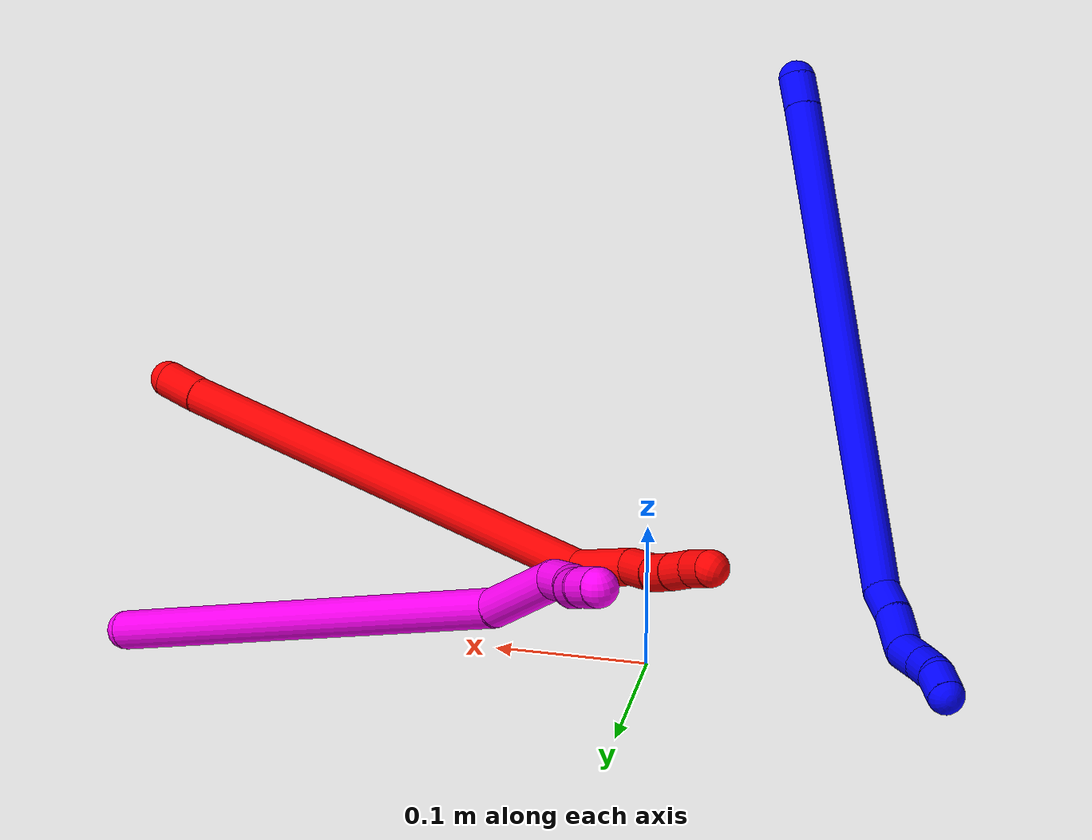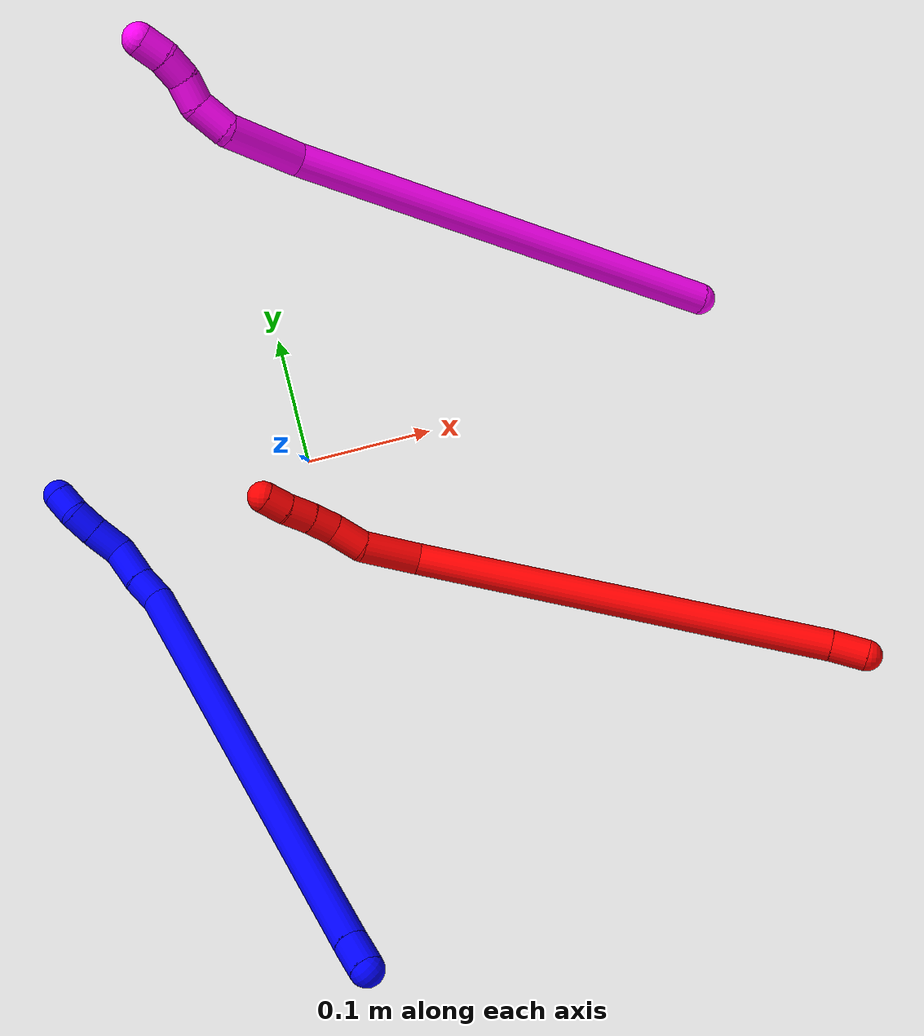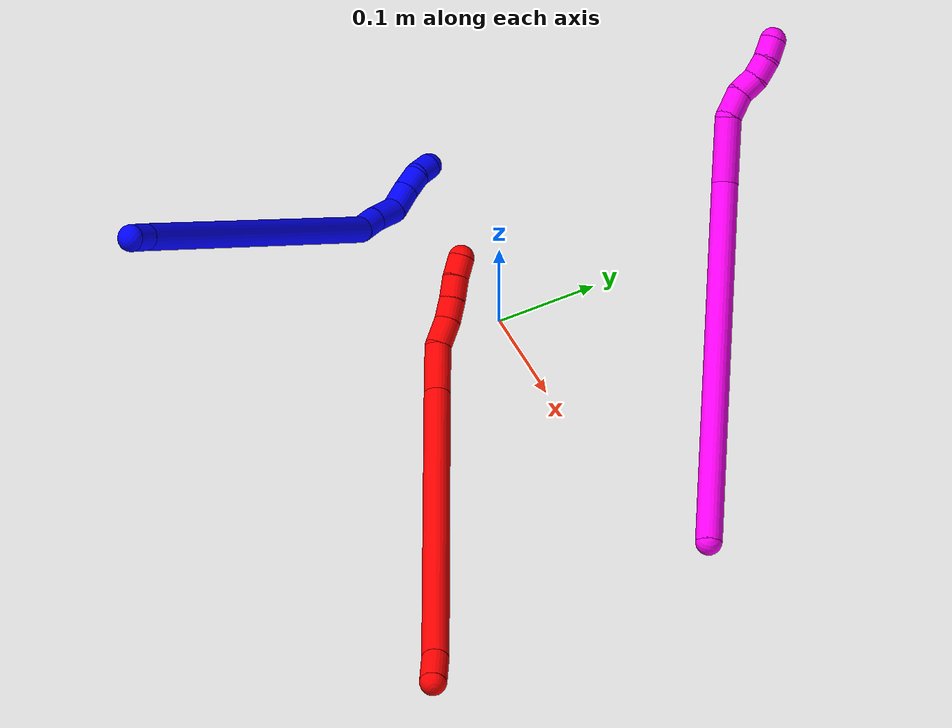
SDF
<sdf version="1.7">
 <world name="default">
  <model name="photoneo_s_sensor">
   <static>1</static>
   <pose>0 0 2 1.57079 1.57079 3.14159</pose>
   <link name="link">
    <inertial><mass>0.1</mass></inertial>
    <sensor name="sensor" type="depth">
     <update_rate>30</update_rate>
     <camera>
      <horizontal_fov>1.22</horizontal_fov>
      <image><width>1920</width><height>1200</height><format>B8G8R8</format></image>
      <clip><near>0.1</near><far>2</far></clip>
      <depth_camera><output>points</output></depth_camera>
     </camera>
     <plugin name="camera_plugin" filename="libgazebo_ros_depth_camera.so">
      <baseline>0.2</baseline>
      <alwaysOn>1</alwaysOn>
      <updateRate>0.0</updateRate>
      <cameraName>camera_ir</cameraName>
      <imageTopicName>/camera/color/image_raw</imageTopicName>
      <cameraInfoTopicName>/camera/color/camera_info</cameraInfoTopicName>
      <depthImageTopicName>/camera/depth/image_raw</depthImageTopicName>
      <depthImageCameraInfoTopicName>/camera/depth/camera_info</depthImageCameraInfoTopicName>
      <pointCloudTopicName>/camera/depth/points</pointCloudTopicName>
      <frameName>fr_optical</frameName>
      <pointCloudCutoff>0.1</pointCloudCutoff>
      <pointCloudCutoffMax>2.0</pointCloudCutoffMax>
      <distortionK1>0</distortionK1>
      <distortionK2>0</distortionK2>
      <distortionK3>0</distortionK3>
      <distortionT1>0</distortionT1>
      <distortionT2>0</distortionT2>
      <CxPrime>0</CxPrime>
      <Cx>0</Cx>
      <Cy>0</Cy>
      <focalLength>0</focalLength>
      <hackBaseline>0</hackBaseline>
     </plugin>
    </sensor>
   </link>
  </model>
  <model name="bin">
   <static>1</static>
   <link name="bottom">
    <collision name="collision-bottom">
     <pose>0 0 -0.01 0 -0 0</pose>
     <geometry><box><size>0.8 0.6 0.02</size></box></geometry>
     <surface>
      <friction><ode><mu>100</mu><mu2>100</mu2></ode></friction>
      <contact><collide_bitmask>65535</collide_bitmask></contact>
     </surface>
    </collision>
   </link>
   <link name="west_wall">
    <collision name="collision-west_wall">
     <pose>-0.41 0 0.1 0 -0 0</pose>
     <geometry><box><size>0.02 0.6 0.2</size></box></geometry>
     <surface>
      <friction><ode><mu>100</mu><mu2>100</mu2></ode></friction>
      <contact><collide_bitmask>65535</collide_bitmask></contact>
     </surface>
    </collision>
   </link>
   <link name="east_wall">
    <collision name="collision-east_wall">
     <pose>0.41 0 0.1 0 -0 0</pose>
     <geometry><box><size>0.02 0.6 0.2</size></box></geometry>
     <surface>
      <friction><ode><mu>100</mu><mu2>100</mu2></ode></friction>
      <contact><collide_bitmask>65535</collide_bitmask></contact>
     </surface>
    </collision>
   </link>
   <link name="south_wall">
    <collision name="collision-south_wall">
     <pose>0 -0.31 0.1 0 -0 0</pose>
     <geometry><box><size>0.8 0.02 0.2</size></box></geometry>
     <surface>
      <friction><ode><mu>100</mu><mu2>100</mu2></ode></friction>
      <contact><collide_bitmask>65535</collide_bitmask></contact>
     </surface>
    </collision>
   </link>
   <link name="north_wall">
    <collision name="collision-north_wall">
     <pose>0 0.31 0.1 0 -0 0</pose>
     <geometry><box><size>0.8 0.02 0.2</size></box></geometry>
     <surface>
      <friction><ode><mu>100</mu><mu2>100</mu2></ode></friction>
      <contact><collide_bitmask>65535</collide_bitmask></contact>
     </surface>
    </collision>
   </link>
  </model>
  <model name="1">
   <static>0</static>
   <link name="1">
    <collision name="collision-cylinder-e_1_1_4">
     <pose>-0.002651 0.008505 -0.007513 -2.29433 -0.229488 0.50045</pose>
     <geometry><cylinder><radius>0.0125</radius><length>0.023308</length></cylinder></geometry>
     <surface>
      <friction><ode><mu>1.16</mu><mu2>1.16</mu2><slip1>0</slip1><slip2>0</slip2></ode></friction>
      <contact><ode><kp>1e+06</kp><kd>1</kd><max_vel>0</max_vel><min_depth>0.001</min_depth></ode></contact>
     </surface>
    </collision>
    <visual name="visual-cylinder-e_1_1_4">
     <pose>-0.002651 0.008505 -0.007513 -2.29433 -0.229488 0.50045</pose>
     <geometry><cylinder><radius>0.0125</radius><length>0.023308</length></cylinder></geometry>
     <material><ambient>0 0 1 1</ambient></material>
    </visual>
    <collision name="collision-cylinder-e_2_4_5">
     <pose>-0.049626 0.146205 -0.128973 -2.29357 -0.25184 0.546837</pose>
     <geometry><cylinder><radius>0.0125</radius><length>0.355751</length></cylinder></geometry>
     <surface>
      <friction><ode><mu>1.16</mu><mu2>1.16</mu2><slip1>0</slip1><slip2>0</slip2></ode></friction>
      <contact><ode><kp>1e+06</kp><kd>1</kd><max_vel>0</max_vel><min_depth>0.001</min_depth></ode></contact>
     </surface>
    </collision>
    <visual name="visual-cylinder-e_2_4_5">
     <pose>-0.049626 0.146205 -0.128973 -2.29357 -0.25184 0.546837</pose>
     <geometry><cylinder><radius>0.0125</radius><length>0.355751</length></cylinder></geometry>
     <material><ambient>0 0 1 1</ambient></material>
    </visual>
    <collision name="collision-cylinder-e_3_5_6">
     <pose>-0.094551 0.28094 -0.253103 -2.64327 -0.051768 0.202799</pose>
     <geometry><cylinder><radius>0.0125</radius><length>0.023217</length></cylinder></geometry>
     <surface>
      <friction><ode><mu>1.16</mu><mu2>1.16</mu2><slip1>0</slip1><slip2>0</slip2></ode></friction>
      <contact><ode><kp>1e+06</kp><kd>1</kd><max_vel>0</max_vel><min_depth>0.001</min_depth></ode></contact>
     </surface>
    </collision>
    <visual name="visual-cylinder-e_3_5_6">
     <pose>-0.094551 0.28094 -0.253103 -2.64327 -0.051768 0.202799</pose>
     <geometry><cylinder><radius>0.0125</radius><length>0.023217</length></cylinder></geometry>
     <material><ambient>0 0 1 1</ambient></material>
    </visual>
    <collision name="collision-cylinder-e_4_6_7">
     <pose>-0.097952 0.294004 -0.276473 -2.6231 -0.182414 0.664169</pose>
     <geometry><cylinder><radius>0.0125</radius><length>0.030877</length></cylinder></geometry>
     <surface>
      <friction><ode><mu>1.16</mu><mu2>1.16</mu2><slip1>0</slip1><slip2>0</slip2></ode></friction>
      <contact><ode><kp>1e+06</kp><kd>1</kd><max_vel>0</max_vel><min_depth>0.001</min_depth></ode></contact>
     </surface>
    </collision>
    <visual name="visual-cylinder-e_4_6_7">
     <pose>-0.097952 0.294004 -0.276473 -2.6231 -0.182414 0.664169</pose>
     <geometry><cylinder><radius>0.0125</radius><length>0.030877</length></cylinder></geometry>
     <material><ambient>0 0 1 1</ambient></material>
    </visual>
    <collision name="collision-cylinder-e_5_7_8">
     <pose>-0.098754 0.303241 -0.302122 -3.00506 0.157575 -1.71412</pose>
     <geometry><cylinder><radius>0.0125</radius><length>0.025474</length></cylinder></geometry>
     <surface>
      <friction><ode><mu>1.16</mu><mu2>1.16</mu2><slip1>0</slip1><slip2>0</slip2></ode></friction>
      <contact><ode><kp>1e+06</kp><kd>1</kd><max_vel>0</max_vel><min_depth>0.001</min_depth></ode></contact>
     </surface>
    </collision>
    <visual name="visual-cylinder-e_5_7_8">
     <pose>-0.098754 0.303241 -0.302122 -3.00506 0.157575 -1.71412</pose>
     <geometry><cylinder><radius>0.0125</radius><length>0.025474</length></cylinder></geometry>
     <material><ambient>0 0 1 1</ambient></material>
    </visual>
    <collision name="collision-cylinder-e_6_8_9">
     <pose>-0.095887 0.305842 -0.325121 -3.05736 0.081916 -1.54284</pose>
     <geometry><cylinder><radius>0.0125</radius><length>0.02122</length></cylinder></geometry>
     <surface>
      <friction><ode><mu>1.16</mu><mu2>1.16</mu2><slip1>0</slip1><slip2>0</slip2></ode></friction>
      <contact><ode><kp>1e+06</kp><kd>1</kd><max_vel>0</max_vel><min_depth>0.001</min_depth></ode></contact>
     </surface>
    </collision>
    <visual name="visual-cylinder-e_6_8_9">
     <pose>-0.095887 0.305842 -0.325121 -3.05736 0.081916 -1.54284</pose>
     <geometry><cylinder><radius>0.0125</radius><length>0.02122</length></cylinder></geometry>
     <material><ambient>0 0 1 1</ambient></material>
    </visual>
    <collision name="collision-cylinder-e_7_9_2">
     <pose>-0.095791 0.311067 -0.344722 -2.69549 -0.07672 0.33522</pose>
     <geometry><cylinder><radius>0.0125</radius><length>0.020153</length></cylinder></geometry>
     <surface>
      <friction><ode><mu>1.16</mu><mu2>1.16</mu2><slip1>0</slip1><slip2>0</slip2></ode></friction>
      <contact><ode><kp>1e+06</kp><kd>1</kd><max_vel>0</max_vel><min_depth>0.001</min_depth></ode></contact>
     </surface>
    </collision>
    <visual name="visual-cylinder-e_7_9_2">
     <pose>-0.095791 0.311067 -0.344722 -2.69549 -0.07672 0.33522</pose>
     <geometry><cylinder><radius>0.0125</radius><length>0.020153</length></cylinder></geometry>
     <material><ambient>0 0 1 1</ambient></material>
    </visual>
    <collision name="collision-sphere-2">
     <pose>-0.096564 0.315402 -0.353786 0 -0 0</pose>
     <geometry><sphere><radius>0.0125</radius></sphere></geometry>
     <surface>
      <friction><ode><mu>1.16</mu><mu2>1.16</mu2><slip1>0</slip1><slip2>0</slip2></ode></friction>
      <contact><ode><kp>1e+06</kp><kd>1</kd><max_vel>0</max_vel><min_depth>0.001</min_depth></ode></contact>
     </surface>
    </collision>
    <visual name="visual-sphere-2">
     <pose>-0.096564 0.315402 -0.353786 0 -0 0</pose>
     <geometry><sphere><radius>0.0125</radius></sphere></geometry>
     <material><ambient>0 0 1 1</ambient></material>
    </visual>
    <collision name="collision-sphere-9">
     <pose>-0.095019 0.306732 -0.335658 0 -0 0</pose>
     <geometry><sphere><radius>0.0125</radius></sphere></geometry>
     <surface>
      <friction><ode><mu>1.16</mu><mu2>1.16</mu2><slip1>0</slip1><slip2>0</slip2></ode></friction>
      <contact><ode><kp>1e+06</kp><kd>1</kd><max_vel>0</max_vel><min_depth>0.001</min_depth></ode></contact>
     </surface>
    </collision>
    <visual name="visual-sphere-9">
     <pose>-0.095019 0.306732 -0.335658 0 -0 0</pose>
     <geometry><sphere><radius>0.0125</radius></sphere></geometry>
     <material><ambient>0 0 1 1</ambient></material>
    </visual>
    <collision name="collision-sphere-4">
     <pose>-0.005302 0.01701 -0.015026 0 -0 0</pose>
     <geometry><sphere><radius>0.0125</radius></sphere></geometry>
     <surface>
      <friction><ode><mu>1.16</mu><mu2>1.16</mu2><slip1>0</slip1><slip2>0</slip2></ode></friction>
      <contact><ode><kp>1e+06</kp><kd>1</kd><max_vel>0</max_vel><min_depth>0.001</min_depth></ode></contact>
     </surface>
    </collision>
    <visual name="visual-sphere-4">
     <pose>-0.005302 0.01701 -0.015026 0 -0 0</pose>
     <geometry><sphere><radius>0.0125</radius></sphere></geometry>
     <material><ambient>0 0 1 1</ambient></material>
    </visual>
    <collision name="collision-sphere-1">
     <geometry><sphere><radius>0.0125</radius></sphere></geometry>
     <surface>
      <friction><ode><mu>1.16</mu><mu2>1.16</mu2><slip1>0</slip1><slip2>0</slip2></ode></friction>
      <contact><ode><kp>1e+06</kp><kd>1</kd><max_vel>0</max_vel><min_depth>0.001</min_depth></ode></contact>
     </surface>
    </collision>
    <visual name="visual-sphere-1">
     <geometry><sphere><radius>0.0125</radius></sphere></geometry>
     <material><ambient>0 0 1 1</ambient></material>
    </visual>
    <collision name="collision-sphere-8">
     <pose>-0.096755 0.304953 -0.314584 0 -0 0</pose>
     <geometry><sphere><radius>0.0125</radius></sphere></geometry>
     <surface>
      <friction><ode><mu>1.16</mu><mu2>1.16</mu2><slip1>0</slip1><slip2>0</slip2></ode></friction>
      <contact><ode><kp>1e+06</kp><kd>1</kd><max_vel>0</max_vel><min_depth>0.001</min_depth></ode></contact>
     </surface>
    </collision>
    <visual name="visual-sphere-8">
     <pose>-0.096755 0.304953 -0.314584 0 -0 0</pose>
     <geometry><sphere><radius>0.0125</radius></sphere></geometry>
     <material><ambient>0 0 1 1</ambient></material>
    </visual>
    <collision name="collision-sphere-5">
     <pose>-0.09395 0.275399 -0.24292 0 -0 0</pose>
     <geometry><sphere><radius>0.0125</radius></sphere></geometry>
     <surface>
      <friction><ode><mu>1.16</mu><mu2>1.16</mu2><slip1>0</slip1><slip2>0</slip2></ode></friction>
      <contact><ode><kp>1e+06</kp><kd>1</kd><max_vel>0</max_vel><min_depth>0.001</min_depth></ode></contact>
     </surface>
    </collision>
    <visual name="visual-sphere-5">
     <pose>-0.09395 0.275399 -0.24292 0 -0 0</pose>
     <geometry><sphere><radius>0.0125</radius></sphere></geometry>
     <material><ambient>0 0 1 1</ambient></material>
    </visual>
    <collision name="collision-sphere-6">
     <pose>-0.095152 0.28648 -0.263286 0 -0 0</pose>
     <geometry><sphere><radius>0.0125</radius></sphere></geometry>
     <surface>
      <friction><ode><mu>1.16</mu><mu2>1.16</mu2><slip1>0</slip1><slip2>0</slip2></ode></friction>
      <contact><ode><kp>1e+06</kp><kd>1</kd><max_vel>0</max_vel><min_depth>0.001</min_depth></ode></contact>
     </surface>
    </collision>
    <visual name="visual-sphere-6">
     <pose>-0.095152 0.28648 -0.263286 0 -0 0</pose>
     <geometry><sphere><radius>0.0125</radius></sphere></geometry>
     <material><ambient>0 0 1 1</ambient></material>
    </visual>
    <collision name="collision-sphere-7">
     <pose>-0.100753 0.301528 -0.28966 0 -0 0</pose>
     <geometry><sphere><radius>0.0125</radius></sphere></geometry>
     <surface>
      <friction><ode><mu>1.16</mu><mu2>1.16</mu2><slip1>0</slip1><slip2>0</slip2></ode></friction>
      <contact><ode><kp>1e+06</kp><kd>1</kd><max_vel>0</max_vel><min_depth>0.001</min_depth></ode></contact>
     </surface>
    </collision>
    <visual name="visual-sphere-7">
     <pose>-0.100753 0.301528 -0.28966 0 -0 0</pose>
     <geometry><sphere><radius>0.0125</radius></sphere></geometry>
     <material><ambient>0 0 1 1</ambient></material>
    </visual>
    <inertial>
     <pose>-0.058834 0.17659 -0.164026 0 -0 0</pose>
     <mass>0.5</mass>
     <inertia>
      <ixx>0.005012</ixx>
      <ixy>0</ixy>
      <ixz>0</ixz>
      <iyy>0.000154</iyy>
      <iyz>0</iyz>
      <izz>-0.001829</izz>
     </inertia>
    </inertial>
   </link>
   <pose>-0.029151 -0.355736 0.262166 -1.78232 -0.227384 -2.61819</pose>
  </model>
  <model name="2">
   <static>0</static>
   <link name="2">
    <collision name="collision-cylinder-e_1_1_4">
     <pose>-0.000634 0.002515 -0.01429 -2.96739 -0.043676 0.490206</pose>
     <geometry><cylinder><radius>0.0125</radius><length>0.029047</length></cylinder></geometry>
     <surface>
      <friction><ode><mu>1.16</mu><mu2>1.16</mu2><slip1>0</slip1><slip2>0</slip2></ode></friction>
      <contact><ode><kp>1e+06</kp><kd>1</kd><max_vel>0</max_vel><min_depth>0.001</min_depth></ode></contact>
     </surface>
    </collision>
    <visual name="visual-cylinder-e_1_1_4">
     <pose>-0.000634 0.002515 -0.01429 -2.96739 -0.043676 0.490206</pose>
     <geometry><cylinder><radius>0.0125</radius><length>0.029047</length></cylinder></geometry>
     <material><ambient>1 0 0 1</ambient></material>
    </visual>
    <collision name="collision-cylinder-e_2_4_5">
     <pose>-0.01344 0.024268 -0.193041 -3.02514 -0.073379 1.12395</pose>
     <geometry><cylinder><radius>0.0125</radius><length>0.332058</length></cylinder></geometry>
     <surface>
      <friction><ode><mu>1.16</mu><mu2>1.16</mu2><slip1>0</slip1><slip2>0</slip2></ode></friction>
      <contact><ode><kp>1e+06</kp><kd>1</kd><max_vel>0</max_vel><min_depth>0.001</min_depth></ode></contact>
     </surface>
    </collision>
    <visual name="visual-cylinder-e_2_4_5">
     <pose>-0.01344 0.024268 -0.193041 -3.02514 -0.073379 1.12395</pose>
     <geometry><cylinder><radius>0.0125</radius><length>0.332058</length></cylinder></geometry>
     <material><ambient>1 0 0 1</ambient></material>
    </visual>
    <collision name="collision-cylinder-e_3_5_6">
     <pose>-0.037062 0.047828 -0.378254 -2.93627 -0.495257 2.36768</pose>
     <geometry><cylinder><radius>0.0125</radius><length>0.048183</length></cylinder></geometry>
     <surface>
      <friction><ode><mu>1.16</mu><mu2>1.16</mu2><slip1>0</slip1><slip2>0</slip2></ode></friction>
      <contact><ode><kp>1e+06</kp><kd>1</kd><max_vel>0</max_vel><min_depth>0.001</min_depth></ode></contact>
     </surface>
    </collision>
    <visual name="visual-cylinder-e_3_5_6">
     <pose>-0.037062 0.047828 -0.378254 -2.93627 -0.495257 2.36768</pose>
     <geometry><cylinder><radius>0.0125</radius><length>0.048183</length></cylinder></geometry>
     <material><ambient>1 0 0 1</ambient></material>
    </visual>
    <collision name="collision-cylinder-e_4_6_7">
     <pose>-0.053186 0.058539 -0.410116 -2.61971 -0.349667 1.16881</pose>
     <geometry><cylinder><radius>0.0125</radius><length>0.027284</length></cylinder></geometry>
     <surface>
      <friction><ode><mu>1.16</mu><mu2>1.16</mu2><slip1>0</slip1><slip2>0</slip2></ode></friction>
      <contact><ode><kp>1e+06</kp><kd>1</kd><max_vel>0</max_vel><min_depth>0.001</min_depth></ode></contact>
     </surface>
    </collision>
    <visual name="visual-cylinder-e_4_6_7">
     <pose>-0.053186 0.058539 -0.410116 -2.61971 -0.349667 1.16881</pose>
     <geometry><cylinder><radius>0.0125</radius><length>0.027284</length></cylinder></geometry>
     <material><ambient>1 0 0 1</ambient></material>
    </visual>
    <collision name="collision-cylinder-e_5_7_8">
     <pose>-0.063353 0.068989 -0.429399 -2.68048 -0.541872 1.73835</pose>
     <geometry><cylinder><radius>0.0125</radius><length>0.021304</length></cylinder></geometry>
     <surface>
      <friction><ode><mu>1.16</mu><mu2>1.16</mu2><slip1>0</slip1><slip2>0</slip2></ode></friction>
      <contact><ode><kp>1e+06</kp><kd>1</kd><max_vel>0</max_vel><min_depth>0.001</min_depth></ode></contact>
     </surface>
    </collision>
    <visual name="visual-cylinder-e_5_7_8">
     <pose>-0.063353 0.068989 -0.429399 -2.68048 -0.541872 1.73835</pose>
     <geometry><cylinder><radius>0.0125</radius><length>0.021304</length></cylinder></geometry>
     <material><ambient>1 0 0 1</ambient></material>
    </visual>
    <collision name="collision-cylinder-e_6_8_9">
     <pose>-0.074879 0.076478 -0.445913 -2.75159 -0.589507 1.98803</pose>
     <geometry><cylinder><radius>0.0125</radius><length>0.021699</length></cylinder></geometry>
     <surface>
      <friction><ode><mu>1.16</mu><mu2>1.16</mu2><slip1>0</slip1><slip2>0</slip2></ode></friction>
      <contact><ode><kp>1e+06</kp><kd>1</kd><max_vel>0</max_vel><min_depth>0.001</min_depth></ode></contact>
     </surface>
    </collision>
    <visual name="visual-cylinder-e_6_8_9">
     <pose>-0.074879 0.076478 -0.445913 -2.75159 -0.589507 1.98803</pose>
     <geometry><cylinder><radius>0.0125</radius><length>0.021699</length></cylinder></geometry>
     <material><ambient>1 0 0 1</ambient></material>
    </visual>
    <collision name="collision-cylinder-e_7_9_2">
     <pose>-0.085815 0.084194 -0.462119 -2.64251 -0.500946 1.57469</pose>
     <geometry><cylinder><radius>0.0125</radius><length>0.020424</length></cylinder></geometry>
     <surface>
      <friction><ode><mu>1.16</mu><mu2>1.16</mu2><slip1>0</slip1><slip2>0</slip2></ode></friction>
      <contact><ode><kp>1e+06</kp><kd>1</kd><max_vel>0</max_vel><min_depth>0.001</min_depth></ode></contact>
     </surface>
    </collision>
    <visual name="visual-cylinder-e_7_9_2">
     <pose>-0.085815 0.084194 -0.462119 -2.64251 -0.500946 1.57469</pose>
     <geometry><cylinder><radius>0.0125</radius><length>0.020424</length></cylinder></geometry>
     <material><ambient>1 0 0 1</ambient></material>
    </visual>
    <collision name="collision-sphere-2">
     <pose>-0.090719 0.088481 -0.469984 0 -0 0</pose>
     <geometry><sphere><radius>0.0125</radius></sphere></geometry>
     <surface>
      <friction><ode><mu>1.16</mu><mu2>1.16</mu2><slip1>0</slip1><slip2>0</slip2></ode></friction>
      <contact><ode><kp>1e+06</kp><kd>1</kd><max_vel>0</max_vel><min_depth>0.001</min_depth></ode></contact>
     </surface>
    </collision>
    <visual name="visual-sphere-2">
     <pose>-0.090719 0.088481 -0.469984 0 -0 0</pose>
     <geometry><sphere><radius>0.0125</radius></sphere></geometry>
     <material><ambient>1 0 0 1</ambient></material>
    </visual>
    <collision name="collision-sphere-9">
     <pose>-0.08091 0.079907 -0.454254 0 -0 0</pose>
     <geometry><sphere><radius>0.0125</radius></sphere></geometry>
     <surface>
      <friction><ode><mu>1.16</mu><mu2>1.16</mu2><slip1>0</slip1><slip2>0</slip2></ode></friction>
      <contact><ode><kp>1e+06</kp><kd>1</kd><max_vel>0</max_vel><min_depth>0.001</min_depth></ode></contact>
     </surface>
    </collision>
    <visual name="visual-sphere-9">
     <pose>-0.08091 0.079907 -0.454254 0 -0 0</pose>
     <geometry><sphere><radius>0.0125</radius></sphere></geometry>
     <material><ambient>1 0 0 1</ambient></material>
    </visual>
    <collision name="collision-sphere-4">
     <pose>-0.001268 0.00503 -0.02858 0 -0 0</pose>
     <geometry><sphere><radius>0.0125</radius></sphere></geometry>
     <surface>
      <friction><ode><mu>1.16</mu><mu2>1.16</mu2><slip1>0</slip1><slip2>0</slip2></ode></friction>
      <contact><ode><kp>1e+06</kp><kd>1</kd><max_vel>0</max_vel><min_depth>0.001</min_depth></ode></contact>
     </surface>
    </collision>
    <visual name="visual-sphere-4">
     <pose>-0.001268 0.00503 -0.02858 0 -0 0</pose>
     <geometry><sphere><radius>0.0125</radius></sphere></geometry>
     <material><ambient>1 0 0 1</ambient></material>
    </visual>
    <collision name="collision-sphere-1">
     <geometry><sphere><radius>0.0125</radius></sphere></geometry>
     <surface>
      <friction><ode><mu>1.16</mu><mu2>1.16</mu2><slip1>0</slip1><slip2>0</slip2></ode></friction>
      <contact><ode><kp>1e+06</kp><kd>1</kd><max_vel>0</max_vel><min_depth>0.001</min_depth></ode></contact>
     </surface>
    </collision>
    <visual name="visual-sphere-1">
     <geometry><sphere><radius>0.0125</radius></sphere></geometry>
     <material><ambient>1 0 0 1</ambient></material>
    </visual>
    <collision name="collision-sphere-8">
     <pose>-0.068847 0.07305 -0.437572 0 -0 0</pose>
     <geometry><sphere><radius>0.0125</radius></sphere></geometry>
     <surface>
      <friction><ode><mu>1.16</mu><mu2>1.16</mu2><slip1>0</slip1><slip2>0</slip2></ode></friction>
      <contact><ode><kp>1e+06</kp><kd>1</kd><max_vel>0</max_vel><min_depth>0.001</min_depth></ode></contact>
     </surface>
    </collision>
    <visual name="visual-sphere-8">
     <pose>-0.068847 0.07305 -0.437572 0 -0 0</pose>
     <geometry><sphere><radius>0.0125</radius></sphere></geometry>
     <material><ambient>1 0 0 1</ambient></material>
    </visual>
    <collision name="collision-sphere-5">
     <pose>-0.025613 0.043507 -0.357502 0 -0 0</pose>
     <geometry><sphere><radius>0.0125</radius></sphere></geometry>
     <surface>
      <friction><ode><mu>1.16</mu><mu2>1.16</mu2><slip1>0</slip1><slip2>0</slip2></ode></friction>
      <contact><ode><kp>1e+06</kp><kd>1</kd><max_vel>0</max_vel><min_depth>0.001</min_depth></ode></contact>
     </surface>
    </collision>
    <visual name="visual-sphere-5">
     <pose>-0.025613 0.043507 -0.357502 0 -0 0</pose>
     <geometry><sphere><radius>0.0125</radius></sphere></geometry>
     <material><ambient>1 0 0 1</ambient></material>
    </visual>
    <collision name="collision-sphere-6">
     <pose>-0.048512 0.05215 -0.399005 0 -0 0</pose>
     <geometry><sphere><radius>0.0125</radius></sphere></geometry>
     <surface>
      <friction><ode><mu>1.16</mu><mu2>1.16</mu2><slip1>0</slip1><slip2>0</slip2></ode></friction>
      <contact><ode><kp>1e+06</kp><kd>1</kd><max_vel>0</max_vel><min_depth>0.001</min_depth></ode></contact>
     </surface>
    </collision>
    <visual name="visual-sphere-6">
     <pose>-0.048512 0.05215 -0.399005 0 -0 0</pose>
     <geometry><sphere><radius>0.0125</radius></sphere></geometry>
     <material><ambient>1 0 0 1</ambient></material>
    </visual>
    <collision name="collision-sphere-7">
     <pose>-0.057859 0.064928 -0.421226 0 -0 0</pose>
     <geometry><sphere><radius>0.0125</radius></sphere></geometry>
     <surface>
      <friction><ode><mu>1.16</mu><mu2>1.16</mu2><slip1>0</slip1><slip2>0</slip2></ode></friction>
      <contact><ode><kp>1e+06</kp><kd>1</kd><max_vel>0</max_vel><min_depth>0.001</min_depth></ode></contact>
     </surface>
    </collision>
    <visual name="visual-sphere-7">
     <pose>-0.057859 0.064928 -0.421226 0 -0 0</pose>
     <geometry><sphere><radius>0.0125</radius></sphere></geometry>
     <material><ambient>1 0 0 1</ambient></material>
    </visual>
    <inertial>
     <pose>-0.024891 0.033764 -0.244387 0 -0 0</pose>
     <mass>0.5</mass>
     <inertia>
      <ixx>0.00408</ixx>
      <ixy>0</ixy>
      <ixz>0</ixz>
      <iyy>0.001493</iyy>
      <iyz>0</iyz>
      <izz>-0.000164</izz>
     </inertia>
    </inertial>
   </link>
   <pose>0.388501 -0.256791 0.038923 0.697591 1.35597 0.359934</pose>
  </model>
  <model name="10">
   <static>0</static>
   <link name="10">
    <collision name="collision-cylinder-e_1_1_4">
     <pose>-0.164405 -0.011975 -0.057477 2.93619 -1.2278 -2.85116</pose>
     <geometry><cylinder><radius>0.0125</radius><length>0.349148</length></cylinder></geometry>
     <surface>
      <friction><ode><mu>1.16</mu><mu2>1.16</mu2><slip1>0</slip1><slip2>0</slip2></ode></friction>
      <contact><ode><kp>1e+06</kp><kd>1</kd><max_vel>0</max_vel><min_depth>0.001</min_depth></ode></contact>
     </surface>
    </collision>
    <visual name="visual-cylinder-e_1_1_4">
     <pose>-0.164405 -0.011975 -0.057477 2.93619 -1.2278 -2.85116</pose>
     <geometry><cylinder><radius>0.0125</radius><length>0.349148</length></cylinder></geometry>
     <material><ambient>1 0 0.964706 1</ambient></material>
    </visual>
    <collision name="collision-cylinder-e_2_4_5">
     <pose>-0.354591 -0.025555 -0.132424 3.04997 -0.973274 -2.96873</pose>
     <geometry><cylinder><radius>0.0125</radius><length>0.062367</length></cylinder></geometry>
     <surface>
      <friction><ode><mu>1.16</mu><mu2>1.16</mu2><slip1>0</slip1><slip2>0</slip2></ode></friction>
      <contact><ode><kp>1e+06</kp><kd>1</kd><max_vel>0</max_vel><min_depth>0.001</min_depth></ode></contact>
     </surface>
    </collision>
    <visual name="visual-cylinder-e_2_4_5">
     <pose>-0.354591 -0.025555 -0.132424 3.04997 -0.973274 -2.96873</pose>
     <geometry><cylinder><radius>0.0125</radius><length>0.062367</length></cylinder></geometry>
     <material><ambient>1 0 0.964706 1</ambient></material>
    </visual>
    <collision name="collision-cylinder-e_3_5_6">
     <pose>-0.391858 -0.032831 -0.153971 2.19408 -1.0245 -1.66303</pose>
     <geometry><cylinder><radius>0.0125</radius><length>0.026886</length></cylinder></geometry>
     <surface>
      <friction><ode><mu>1.16</mu><mu2>1.16</mu2><slip1>0</slip1><slip2>0</slip2></ode></friction>
      <contact><ode><kp>1e+06</kp><kd>1</kd><max_vel>0</max_vel><min_depth>0.001</min_depth></ode></contact>
     </surface>
    </collision>
    <visual name="visual-cylinder-e_3_5_6">
     <pose>-0.391858 -0.032831 -0.153971 2.19408 -1.0245 -1.66303</pose>
     <geometry><cylinder><radius>0.0125</radius><length>0.026886</length></cylinder></geometry>
     <material><ambient>1 0 0.964706 1</ambient></material>
    </visual>
    <collision name="collision-cylinder-e_4_6_7">
     <pose>-0.409488 -0.046082 -0.161924 2.04354 -0.625062 -0.971865</pose>
     <geometry><cylinder><radius>0.0125</radius><length>0.020999</length></cylinder></geometry>
     <surface>
      <friction><ode><mu>1.16</mu><mu2>1.16</mu2><slip1>0</slip1><slip2>0</slip2></ode></friction>
      <contact><ode><kp>1e+06</kp><kd>1</kd><max_vel>0</max_vel><min_depth>0.001</min_depth></ode></contact>
     </surface>
    </collision>
    <visual name="visual-cylinder-e_4_6_7">
     <pose>-0.409488 -0.046082 -0.161924 2.04354 -0.625062 -0.971865</pose>
     <geometry><cylinder><radius>0.0125</radius><length>0.020999</length></cylinder></geometry>
     <material><ambient>1 0 0.964706 1</ambient></material>
    </visual>
    <collision name="collision-cylinder-e_5_7_8">
     <pose>-0.422992 -0.05872 -0.170526 2.32217 -0.816175 -1.56635</pose>
     <geometry><cylinder><radius>0.0125</radius><length>0.020207</length></cylinder></geometry>
     <surface>
      <friction><ode><mu>1.16</mu><mu2>1.16</mu2><slip1>0</slip1><slip2>0</slip2></ode></friction>
      <contact><ode><kp>1e+06</kp><kd>1</kd><max_vel>0</max_vel><min_depth>0.001</min_depth></ode></contact>
     </surface>
    </collision>
    <visual name="visual-cylinder-e_5_7_8">
     <pose>-0.422992 -0.05872 -0.170526 2.32217 -0.816175 -1.56635</pose>
     <geometry><cylinder><radius>0.0125</radius><length>0.020207</length></cylinder></geometry>
     <material><ambient>1 0 0.964706 1</ambient></material>
    </visual>
    <collision name="collision-cylinder-e_6_8_2">
     <pose>-0.439193 -0.067133 -0.179068 2.42054 -1.04899 -1.98654</pose>
     <geometry><cylinder><radius>0.0125</radius><length>0.020393</length></cylinder></geometry>
     <surface>
      <friction><ode><mu>1.16</mu><mu2>1.16</mu2><slip1>0</slip1><slip2>0</slip2></ode></friction>
      <contact><ode><kp>1e+06</kp><kd>1</kd><max_vel>0</max_vel><min_depth>0.001</min_depth></ode></contact>
     </surface>
    </collision>
    <visual name="visual-cylinder-e_6_8_2">
     <pose>-0.439193 -0.067133 -0.179068 2.42054 -1.04899 -1.98654</pose>
     <geometry><cylinder><radius>0.0125</radius><length>0.020393</length></cylinder></geometry>
     <material><ambient>1 0 0.964706 1</ambient></material>
    </visual>
    <collision name="collision-sphere-2">
     <pose>-0.448032 -0.070488 -0.182885 0 -0 0</pose>
     <geometry><sphere><radius>0.0125</radius></sphere></geometry>
     <surface>
      <friction><ode><mu>1.16</mu><mu2>1.16</mu2><slip1>0</slip1><slip2>0</slip2></ode></friction>
      <contact><ode><kp>1e+06</kp><kd>1</kd><max_vel>0</max_vel><min_depth>0.001</min_depth></ode></contact>
     </surface>
    </collision>
    <visual name="visual-sphere-2">
     <pose>-0.448032 -0.070488 -0.182885 0 -0 0</pose>
     <geometry><sphere><radius>0.0125</radius></sphere></geometry>
     <material><ambient>1 0 0.964706 1</ambient></material>
    </visual>
    <collision name="collision-sphere-4">
     <pose>-0.328811 -0.02395 -0.114954 0 -0 0</pose>
     <geometry><sphere><radius>0.0125</radius></sphere></geometry>
     <surface>
      <friction><ode><mu>1.16</mu><mu2>1.16</mu2><slip1>0</slip1><slip2>0</slip2></ode></friction>
      <contact><ode><kp>1e+06</kp><kd>1</kd><max_vel>0</max_vel><min_depth>0.001</min_depth></ode></contact>
     </surface>
    </collision>
    <visual name="visual-sphere-4">
     <pose>-0.328811 -0.02395 -0.114954 0 -0 0</pose>
     <geometry><sphere><radius>0.0125</radius></sphere></geometry>
     <material><ambient>1 0 0.964706 1</ambient></material>
    </visual>
    <collision name="collision-sphere-1">
     <geometry><sphere><radius>0.0125</radius></sphere></geometry>
     <surface>
      <friction><ode><mu>1.16</mu><mu2>1.16</mu2><slip1>0</slip1><slip2>0</slip2></ode></friction>
      <contact><ode><kp>1e+06</kp><kd>1</kd><max_vel>0</max_vel><min_depth>0.001</min_depth></ode></contact>
     </surface>
    </collision>
    <visual name="visual-sphere-1">
     <geometry><sphere><radius>0.0125</radius></sphere></geometry>
     <material><ambient>1 0 0.964706 1</ambient></material>
    </visual>
    <collision name="collision-sphere-8">
     <pose>-0.430353 -0.063777 -0.17525 0 -0 0</pose>
     <geometry><sphere><radius>0.0125</radius></sphere></geometry>
     <surface>
      <friction><ode><mu>1.16</mu><mu2>1.16</mu2><slip1>0</slip1><slip2>0</slip2></ode></friction>
      <contact><ode><kp>1e+06</kp><kd>1</kd><max_vel>0</max_vel><min_depth>0.001</min_depth></ode></contact>
     </surface>
    </collision>
    <visual name="visual-sphere-8">
     <pose>-0.430353 -0.063777 -0.17525 0 -0 0</pose>
     <geometry><sphere><radius>0.0125</radius></sphere></geometry>
     <material><ambient>1 0 0.964706 1</ambient></material>
    </visual>
    <collision name="collision-sphere-5">
     <pose>-0.380372 -0.02716 -0.149895 0 -0 0</pose>
     <geometry><sphere><radius>0.0125</radius></sphere></geometry>
     <surface>
      <friction><ode><mu>1.16</mu><mu2>1.16</mu2><slip1>0</slip1><slip2>0</slip2></ode></friction>
      <contact><ode><kp>1e+06</kp><kd>1</kd><max_vel>0</max_vel><min_depth>0.001</min_depth></ode></contact>
     </surface>
    </collision>
    <visual name="visual-sphere-5">
     <pose>-0.380372 -0.02716 -0.149895 0 -0 0</pose>
     <geometry><sphere><radius>0.0125</radius></sphere></geometry>
     <material><ambient>1 0 0.964706 1</ambient></material>
    </visual>
    <collision name="collision-sphere-6">
     <pose>-0.403344 -0.038501 -0.158048 0 -0 0</pose>
     <geometry><sphere><radius>0.0125</radius></sphere></geometry>
     <surface>
      <friction><ode><mu>1.16</mu><mu2>1.16</mu2><slip1>0</slip1><slip2>0</slip2></ode></friction>
      <contact><ode><kp>1e+06</kp><kd>1</kd><max_vel>0</max_vel><min_depth>0.001</min_depth></ode></contact>
     </surface>
    </collision>
    <visual name="visual-sphere-6">
     <pose>-0.403344 -0.038501 -0.158048 0 -0 0</pose>
     <geometry><sphere><radius>0.0125</radius></sphere></geometry>
     <material><ambient>1 0 0.964706 1</ambient></material>
    </visual>
    <collision name="collision-sphere-7">
     <pose>-0.415631 -0.053662 -0.165801 0 -0 0</pose>
     <geometry><sphere><radius>0.0125</radius></sphere></geometry>
     <surface>
      <friction><ode><mu>1.16</mu><mu2>1.16</mu2><slip1>0</slip1><slip2>0</slip2></ode></friction>
      <contact><ode><kp>1e+06</kp><kd>1</kd><max_vel>0</max_vel><min_depth>0.001</min_depth></ode></contact>
     </surface>
    </collision>
    <visual name="visual-sphere-7">
     <pose>-0.415631 -0.053662 -0.165801 0 -0 0</pose>
     <geometry><sphere><radius>0.0125</radius></sphere></geometry>
     <material><ambient>1 0 0.964706 1</ambient></material>
    </visual>
    <inertial>
     <pose>-0.232309 -0.020361 -0.085929 0 -0 0</pose>
     <mass>0.5</mass>
     <inertia>
      <ixx>-0.001544</ixx>
      <ixy>0</ixy>
      <ixz>0</ixz>
      <iyy>0.003208</iyy>
      <iyz>0</iyz>
      <izz>0.003612</izz>
     </inertia>
    </inertial>
   </link>
   <pose>0.335259 0.049247 0.012022 3.09425 0.060703 -0.423757</pose>
  </model>
 </world>
</sdf>
